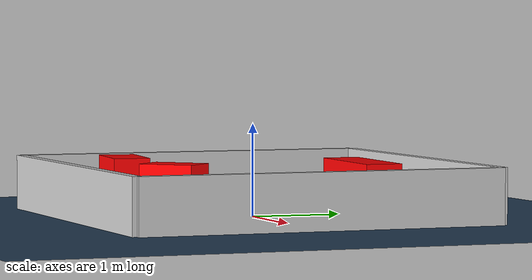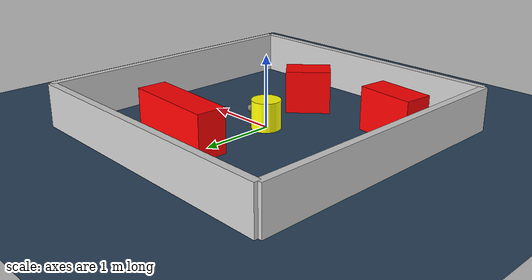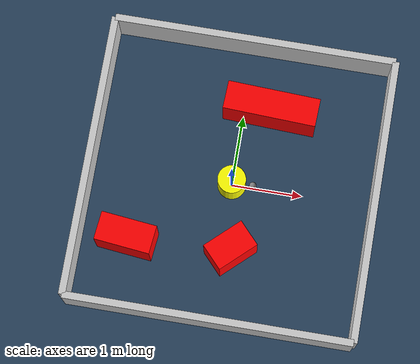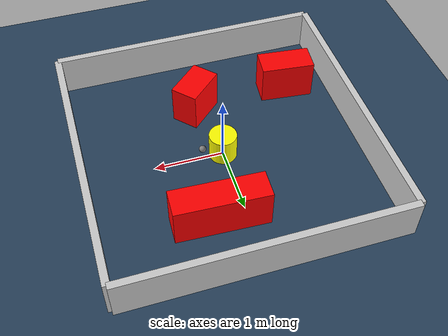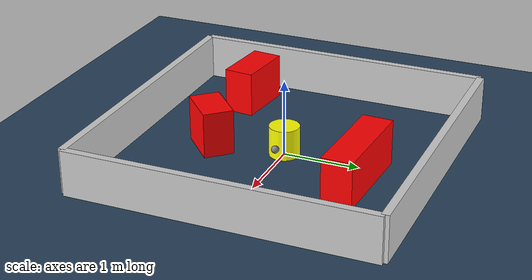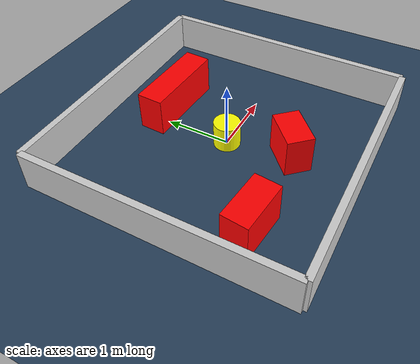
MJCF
<?xml version="1.0" ?>
<mujoco model="generated_environment">
  <option timestep="0.01" integrator="RK4" cone="elliptic"/>
  <default>
    <geom density="1"/>
  </default>
  <asset>
    <texture builtin="gradient" height="3072" rgb1="0.3 0.5 0.7" rgb2="0 0 0" type="skybox" width="512"/>
    <texture builtin="checker" height="300" mark="edge" markrgb="0.8 0.8 0.8" name="groundplane" rgb1="0.2 0.3 0.4" rgb2="0.1 0.2 0.3" type="2d" width="300"/>
    <material name="groundplane" reflectance="0.2" texrepeat="5 5" texture="groundplane" texuniform="true"/>
    <material name="robot" rgba="0.0 1.0 0.0 1"/>
  </asset>
  <worldbody>
    <light dir="0 0 -1" directional="true" pos="0 0 1.5"/>
    <geom condim="4" friction="1.0 0.005 0.001" material="groundplane" name="floor" size="0 0 0.05" type="plane"/>
    <body name="walls">
      <geom name="wall_1" condim="4" pos="-2.0 0.0 0.3" rgba="0.800000011920929 0.800000011920929 0.800000011920929 1.0" size="0.05 2.0 0.3" type="box"/>
      <geom name="wall_2" condim="4" pos="2.0 0.0 0.3" rgba="0.800000011920929 0.800000011920929 0.800000011920929 1.0" size="0.05 2.0 0.3" type="box"/>
      <geom name="wall_3" condim="4" pos="0.0 -2.0 0.3" rgba="0.800000011920929 0.800000011920929 0.800000011920929 1.0" size="2.0 0.05 0.3" type="box"/>
      <geom name="wall_4" condim="4" pos="0.0 2.0 0.3" rgba="0.800000011920929 0.800000011920929 0.800000011920929 1.0" size="2.0 0.05 0.3" type="box"/>
    </body>
    <body name="robot">
      <joint name="joint_x" type="slide" pos="0 0 0" axis="1 0 0"/>
      <joint name="joint_y" type="slide" pos="0 0 0" axis="0 1 0"/>
      <geom name="robot" type="sphere" pos="0.3 0.0 0.2" size="0.05" mass="5." friction="1.0 0.005 0.0001" condim="4" rgba="0.5 0.5 0.5 1.0"/>
      <site name="sensor_ball"/>
    </body>
    <body name="obstacle_movable_1">
      <geom name="obstacle_movable_1" condim="4" pos="0.0 0.0 0.2" euler="0 0 0.0" friction="1.0 0.005 0.001" rgba="1.0 1.0 0.0 1.0" size="0.2 0.2 0.0" type="cylinder" mass="0.1"/>
      <joint type="free"/>
    </body>
    <body name="obstacle_2_static">
      <geom name="obstacle_2_static" condim="4" pos="0.3770423598368209 1.1138217804129835 0.3" euler="0 0 357.4804389726071" friction="1.0 0.005 0.001" rgba="1 0 0 1" size="0.6558993608892129 0.2 0.3" type="box"/>
    </body>
    <body name="obstacle_3_static">
      <geom name="obstacle_3_static" condim="4" pos="-1.3042088684051638 -1.0199195743038465 0.3" euler="0 0 354.0182025144648" friction="1.0 0.005 0.001" rgba="1 0 0 1" size="0.3925737169009919 0.2 0.3" type="box"/>
    </body>
    <body name="obstacle_4_static">
      <geom name="obstacle_4_static" condim="4" pos="0.14133611562895854 -0.9548793928198067 0.3" euler="0 0 42.98543231408552" friction="1.0 0.005 0.001" rgba="1 0 0 1" size="0.3108972090724612 0.2 0.3" type="box"/>
    </body>
  </worldbody>
  <actuator>
    <motor name="actuator_x" joint="joint_x" gear="1" ctrlrange="-1 1"/>
    <motor name="actuator_y" joint="joint_y" gear="1" ctrlrange="-1 1"/>
  </actuator>
</mujoco>
